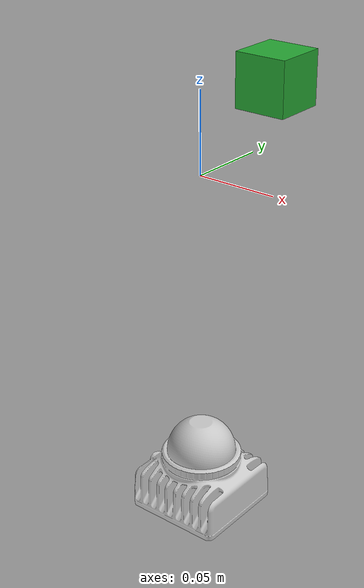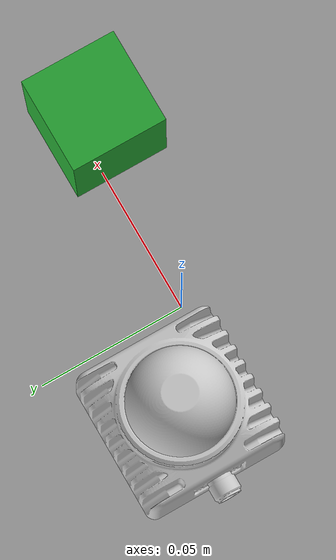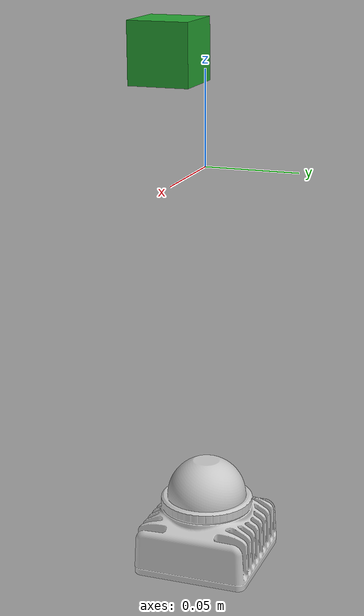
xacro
<robot xmlns:xacro="http://www.ros.org/wiki/xacro" name="example">

  <link name="lidar" />
  <xacro:include filename="$(find livox_laser_simulation)/urdf/livox_mid360.xacro"/>
  <joint name="lidar_platform" type="fixed" >
    <parent link="lidar" />
    <child link="livox_base" />
    <origin xyz="0 0 -0.2" rpy="0 0 0" />
  </joint>

  <!-- Add IMU, as livox simulation on gazebo doesn't provide imu data, However in real life we also have IMU data -->
  <!--imu -->
  <link name="imu_base_link">
      <visual>
      <origin xyz="0 0 0" rpy="0 0 0" />
      <geometry >
          <box size="0.03 0.03 0.03" />
      </geometry>
      </visual>
      <collision>
      <origin xyz="0 0 0" rpy="0 0 0" />
      <geometry >
          <box size="0.03 0.03 0.03" />
      </geometry>
      </collision>
      <inertial>
          <mass value="0.001"/>
          <inertia ixx="0.001" ixy="0.0" ixz="0.0" iyy="0.001" iyz="0.0" izz="0.001"/>
      </inertial>
  </link>

  <gazebo reference="imu_base_link">
      <material>Gazebo/Green</material>
      <turnGravityOff>true</turnGravityOff>
  </gazebo>

  <joint name="imu_platform_joint" type="fixed">
      <parent link="lidar"/>
      <child link="imu_base_link"/>
      <origin xyz="0.05 0 0.065" rpy="0 0 0" />
      <axis xyz="0 0 1" />
  </joint>

    <gazebo reference="imu_base_link">
      <gravity>true</gravity>
      <sensor name="imu_sensor" type="imu">
          <always_on>true</always_on>
          <update_rate>200</update_rate>
          <visualize>true</visualize>
          <topic>/livox/imu</topic>
          <plugin filename="libgazebo_ros_imu_sensor.so" name="imu_plugin">
              <topicName>/livox/imu</topicName>
              <bodyName>imu_base_link</bodyName>
              <updateRateHZ>200.0</updateRateHZ>
              <gaussianNoise>0.00329</gaussianNoise>
              <xyzOffset>0 0 0</xyzOffset>
              <rpyOffset>0 0 0</rpyOffset>
              <frameName>imu_base_link</frameName>
          </plugin>
          <pose>0 0 0 0 0 0</pose>
      </sensor>
  </gazebo>

</robot>

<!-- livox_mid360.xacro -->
<robot xmlns:xacro="http://ros.org/wiki/xacro">

  <xacro:property name="M_PI" value="3.14159"/>
  <xacro:property name="laser_min_range" value="0.1"/>
  <xacro:property name="laser_max_range" value="200.0"/>
  <xacro:property name="ros_topic" value="scan"/>
  <xacro:property name="samples" value="24000"/>
  <xacro:property name="downsample" value="1"/>

  <xacro:macro name="null_inertial">
    <inertial>
      <mass value="0.1"/>
    <inertia ixx="0.01" ixy="0" ixz="0"
          iyy="0.01" iyz="0"
          izz="0.01"/>
    </inertial>
  </xacro:macro>
  <xacro:macro name="Livox_Mid_gazebo_sensor" params="visualize:=True update_rate:=10 resolution:=0.002 noise_mean:=0.0 noise_stddev:=0.01 name:=livox">
    <gazebo reference="${name}">
      <sensor type="ray" name="${name}">
        <pose>0 0 0 0 0 0</pose>
        <visualize>${visualize}</visualize>
        <update_rate>${update_rate}</update_rate>
        <!-- This ray plgin is only for visualization. -->
        <plugin name="gazebo_ros_laser_controller" filename="liblivox_laser_simulation.so">
			<ray>
			  <scan>
				<horizontal>
				<samples>100</samples>
				<resolution>1</resolution>
				<min_angle>${0}</min_angle>
				<max_angle>${2*M_PI}</max_angle>
				</horizontal>
				<vertical>
				<samples>360</samples>
				<resolution>1</resolution>
				<min_angle>${-7.22/180*M_PI}</min_angle>
				<max_angle>${55.22/180*M_PI}</max_angle>
				</vertical>
			  </scan>
			  <range>
				<min>${laser_min_range}</min>
				<max>${laser_max_range}</max>
				<resolution>${resolution}</resolution>
			  </range>
			  <noise>
				<type>gaussian</type>
				<mean>${noise_mean}</mean>
				<stddev>${noise_stddev}</stddev>
			  </noise>
			</ray>
          <visualize>${visualize}</visualize>
		  <samples>${samples}</samples>
		  <downsample>${downsample}</downsample>
		  <csv_file_name>package://livox_laser_simulation/scan_mode/mid360.csv</csv_file_name>
		  <ros_topic>${ros_topic}</ros_topic>
        </plugin>
      </sensor>
    </gazebo>
  </xacro:macro>

  <xacro:macro name="Livox_Mid40" params="visualize:=True name:=livox">
    <link name="${name}_base">
      <xacro:null_inertial/>
      <visual>
        <origin xyz="0.00 0 0.0" rpy="1.57 0 3.14"/>
        <geometry>
          <mesh filename="package://livox_laser_simulation/meshes/livox_mid360.dae" scale="0.001 0.001 0.001">
          </mesh>
        </geometry>
      </visual>

      <collision>
		  <origin xyz="0 0 0" rpy="1.57 0 3.14" />
      <geometry>
        <mesh filename="package://livox_laser_simulation/meshes/livox_mid360.dae" scale="0.001 0.001 0.001">
        </mesh>
      </geometry>
      </collision>
    </link>
    <link name="${name}">
      <xacro:null_inertial/>
    </link>

    <joint name="${name}_to_${name}_base_joint" type="fixed">
      <origin rpy="0 0 0" xyz="0.0 0.0 0.03"/>
      <parent link="${name}_base"/>
      <child link="${name}"/>
      <axis xyz="0 0 0" />
    </joint>
    <xacro:Livox_Mid_gazebo_sensor name="${name}" visualize="${visualize}"/>
  </xacro:macro>
    <xacro:Livox_Mid40 name="livox"/>
</robot>
